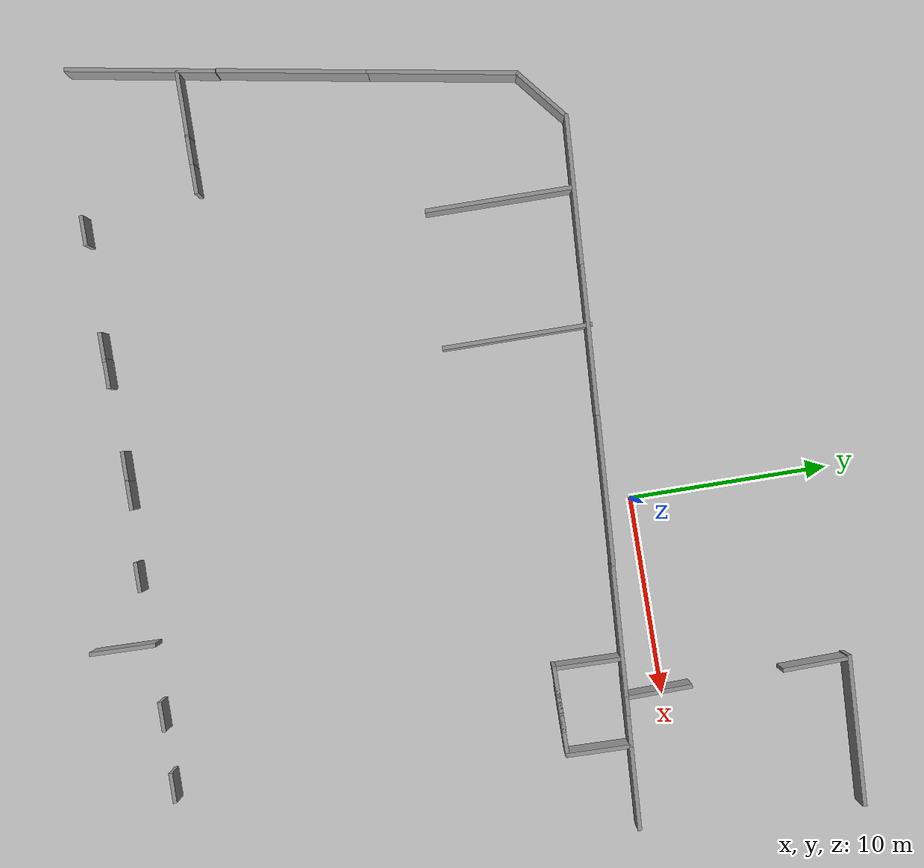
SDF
<sdf version="1.7">
 <world name="default">
  <model name="ground_plane">
   <static>1</static>
   <link name="link">
    <collision name="collision">
     <geometry><plane><normal>0 0 1</normal><size>100 100</size></plane></geometry>
     <surface>
      <contact><collide_bitmask>65535</collide_bitmask></contact>
      <friction><ode><mu>100</mu><mu2>50</mu2></ode></friction>
     </surface>
    </collision>
    <visual name="visual">
     <cast_shadows>0</cast_shadows>
     <geometry><plane><normal>0 0 1</normal><size>100 100</size></plane></geometry>
     <material>
      <script><uri>file://media/materials/scripts/gazebo.material</uri><name>Gazebo/Grey</name></script>
     </material>
    </visual>
   </link>
  </model>
  <model name="grey_wall_clone_4">
   <static>1</static>
   <link name="link">
    <pose>0 0 1.4 0 -0 0</pose>
    <collision name="collision"><geometry><box><size>7.5 0.2 2.8</size></box></geometry></collision>
    <visual name="visual">
     <cast_shadows>0</cast_shadows>
     <geometry><box><size>7.5 0.2 2.8</size></box></geometry>
     <material>
      <script>
       <uri>model://grey_wall/materials/scripts</uri>
       <uri>model://grey_wall/materials/textures</uri>
       <name>vrc/grey_wall</name>
      </script>
     </material>
    </visual>
   </link>
   <pose>-0.621791 -1.28751 -0 0 0 -0.056773</pose>
  </model>
  <model name="grey_wall_clone_4_clone">
   <static>1</static>
   <link name="link">
    <pose>0 0 1.4 0 -0 0</pose>
    <collision name="collision"><geometry><box><size>7.5 0.2 2.8</size></box></geometry></collision>
    <visual name="visual">
     <cast_shadows>0</cast_shadows>
     <geometry><box><size>7.5 0.2 2.8</size></box></geometry>
     <material>
      <script>
       <uri>model://grey_wall/materials/scripts</uri>
       <uri>model://grey_wall/materials/textures</uri>
       <name>vrc/grey_wall</name>
      </script>
     </material>
    </visual>
   </link>
   <pose>-8.10618 -0.875755 -0 0 0 -0.056773</pose>
  </model>
  <model name="grey_wall_clone_4_clone_0">
   <static>1</static>
   <link name="link">
    <pose>0 0 1.4 0 -0 0</pose>
    <collision name="collision"><geometry><box><size>7.5 0.2 2.8</size></box></geometry></collision>
    <visual name="visual">
     <cast_shadows>0</cast_shadows>
     <geometry><box><size>7.5 0.2 2.8</size></box></geometry>
     <material>
      <script>
       <uri>model://grey_wall/materials/scripts</uri>
       <uri>model://grey_wall/materials/textures</uri>
       <name>vrc/grey_wall</name>
      </script>
     </material>
    </visual>
   </link>
   <pose>-15.5562 -0.460659 -0 0 0 -0.056773</pose>
  </model>
  <model name="half_grey_wall_clone_clone_0_clone_1">
   <link name="link">
    <pose>0 0 1.4 0 -0 0</pose>
    <inertial>
     <mass>1</mass>
     <inertia><ixx>1</ixx><ixy>0</ixy><ixz>0</ixz><iyy>1</iyy><iyz>0</iyz><izz>1</izz></inertia>
    </inertial>
    <visual name="visual">
     <cast_shadows>0</cast_shadows>
     <geometry><box><size>3.3 0.2 2.8</size></box></geometry>
     <material>
      <script>
       <uri>model://grey_wall/materials/scripts</uri>
       <uri>model://grey_wall/materials/textures</uri>
       <name>vrc/grey_wall</name>
      </script>
      <shader type="pixel"><normal_map>__default__</normal_map></shader>
      <ambient>1 1 1 1</ambient>
      <diffuse>1 1 1 1</diffuse>
      <specular>0 0 0 1</specular>
      <emissive>0 0 0 1</emissive>
     </material>
    </visual>
    <collision name="collision">
     <geometry><box><size>7.5 0.2 2.8</size></box></geometry>
     <surface>
      <friction>
       <ode><mu>1</mu><mu2>1</mu2><fdir1>0 0 0</fdir1><slip1>0</slip1><slip2>0</slip2></ode>
       <torsional>
        <coefficient>1</coefficient>
        <patch_radius>0</patch_radius>
        <surface_radius>0</surface_radius>
        <use_patch_radius>1</use_patch_radius>
        <ode><slip>0</slip></ode>
       </torsional>
      </friction>
      <bounce><restitution_coefficient>0</restitution_coefficient><threshold>1e+06</threshold></bounce>
      <contact>
       <collide_without_contact>0</collide_without_contact>
       <collide_without_contact_bitmask>1</collide_without_contact_bitmask>
       <collide_bitmask>1</collide_bitmask>
       <ode>
        <soft_cfm>0</soft_cfm>
        <soft_erp>0.2</soft_erp>
        <kp>1e+13</kp>
        <kd>1</kd>
        <max_vel>0.01</max_vel>
        <min_depth>0</min_depth>
       </ode>
       <bullet>
        <split_impulse>1</split_impulse>
        <split_impulse_penetration_threshold>-0.01</split_impulse_penetration_threshold>
        <soft_cfm>0</soft_cfm>
        <soft_erp>0.2</soft_erp>
        <kp>1e+13</kp>
        <kd>1</kd>
       </bullet>
      </contact>
     </surface>
    </collision>
   </link>
   <static>1</static>
   <pose>-20.4293 -1.28686 0 0 0 -2.44925</pose>
  </model>
  <model name="grey_wall_clone_4_clone_0_clone">
   <static>1</static>
   <link name="link">
    <pose>0 0 1.4 0 -0 0</pose>
    <collision name="collision"><geometry><box><size>7.5 0.2 2.8</size></box></geometry></collision>
    <visual name="visual">
     <cast_shadows>0</cast_shadows>
     <geometry><box><size>7.5 0.2 2.8</size></box></geometry>
     <material>
      <script>
       <uri>model://grey_wall/materials/scripts</uri>
       <uri>model://grey_wall/materials/textures</uri>
       <name>vrc/grey_wall</name>
      </script>
     </material>
    </visual>
   </link>
   <pose>-22.3009 -5.96343 0 0 -0 1.40189</pose>
  </model>
  <model name="grey_wall_clone_4_clone_0_clone_clone">
   <static>1</static>
   <link name="link">
    <pose>0 0 1.4 0 -0 0</pose>
    <collision name="collision"><geometry><box><size>7.5 0.2 2.8</size></box></geometry></collision>
    <visual name="visual">
     <cast_shadows>0</cast_shadows>
     <geometry><box><size>7.5 0.2 2.8</size></box></geometry>
     <material>
      <script>
       <uri>model://grey_wall/materials/scripts</uri>
       <uri>model://grey_wall/materials/textures</uri>
       <name>vrc/grey_wall</name>
      </script>
     </material>
    </visual>
   </link>
   <pose>-23.5347 -13.2753 0 0 -0 1.40189</pose>
  </model>
  <model name="grey_wall_clone_4_clone_0_clone_clone_clone">
   <static>1</static>
   <link name="link">
    <pose>0 0 1.4 0 -0 0</pose>
    <collision name="collision"><geometry><box><size>7.5 0.2 2.8</size></box></geometry></collision>
    <visual name="visual">
     <cast_shadows>0</cast_shadows>
     <geometry><box><size>7.5 0.2 2.8</size></box></geometry>
     <material>
      <script>
       <uri>model://grey_wall/materials/scripts</uri>
       <uri>model://grey_wall/materials/textures</uri>
       <name>vrc/grey_wall</name>
      </script>
     </material>
    </visual>
   </link>
   <pose>-24.7789 -20.6957 0 0 -0 1.40189</pose>
  </model>
  <model name="half_grey_wall_clone_clone">
   <link name="link">
    <pose>0 0 1.4 0 -0 0</pose>
    <inertial>
     <mass>1</mass>
     <inertia><ixx>1</ixx><ixy>0</ixy><ixz>0</ixz><iyy>1</iyy><iyz>0</iyz><izz>1</izz></inertia>
    </inertial>
    <visual name="visual">
     <cast_shadows>0</cast_shadows>
     <geometry><box><size>3.3 0.2 2.8</size></box></geometry>
     <material>
      <script>
       <uri>model://grey_wall/materials/scripts</uri>
       <uri>model://grey_wall/materials/textures</uri>
       <name>vrc/grey_wall</name>
      </script>
      <shader type="pixel"><normal_map>__default__</normal_map></shader>
      <ambient>1 1 1 1</ambient>
      <diffuse>1 1 1 1</diffuse>
      <specular>0 0 0 1</specular>
      <emissive>0 0 0 1</emissive>
     </material>
    </visual>
    <collision name="collision">
     <geometry><box><size>7.5 0.2 2.8</size></box></geometry>
     <surface>
      <friction>
       <ode><mu>1</mu><mu2>1</mu2><fdir1>0 0 0</fdir1><slip1>0</slip1><slip2>0</slip2></ode>
       <torsional>
        <coefficient>1</coefficient>
        <patch_radius>0</patch_radius>
        <surface_radius>0</surface_radius>
        <use_patch_radius>1</use_patch_radius>
        <ode><slip>0</slip></ode>
       </torsional>
      </friction>
      <bounce><restitution_coefficient>0</restitution_coefficient><threshold>1e+06</threshold></bounce>
      <contact>
       <collide_without_contact>0</collide_without_contact>
       <collide_without_contact_bitmask>1</collide_without_contact_bitmask>
       <collide_bitmask>1</collide_bitmask>
       <ode>
        <soft_cfm>0</soft_cfm>
        <soft_erp>0.2</soft_erp>
        <kp>1e+13</kp>
        <kd>1</kd>
        <max_vel>0.01</max_vel>
        <min_depth>0</min_depth>
       </ode>
       <bullet>
        <split_impulse>1</split_impulse>
        <split_impulse_penetration_threshold>-0.01</split_impulse_penetration_threshold>
        <soft_cfm>0</soft_cfm>
        <soft_erp>0.2</soft_erp>
        <kp>1e+13</kp>
        <kd>1</kd>
       </bullet>
      </contact>
     </surface>
    </collision>
   </link>
   <static>1</static>
   <pose>-22.8174 -18.896 0 0 0 -3.13942</pose>
  </model>
  <model name="half_grey_wall_clone_clone_clone_0_clone_clone_0_clone_clone_0_clone_0">
   <link name="link">
    <pose>0 0 1.4 0 -0 0</pose>
    <inertial>
     <mass>1</mass>
     <inertia><ixx>1</ixx><ixy>0</ixy><ixz>0</ixz><iyy>1</iyy><iyz>0</iyz><izz>1</izz></inertia>
    </inertial>
    <visual name="visual">
     <cast_shadows>0</cast_shadows>
     <geometry><box><size>1.5 0.2 2.8</size></box></geometry>
     <material>
      <script>
       <uri>model://grey_wall/materials/scripts</uri>
       <uri>model://grey_wall/materials/textures</uri>
       <name>vrc/grey_wall</name>
      </script>
      <shader type="pixel"><normal_map>__default__</normal_map></shader>
      <ambient>1 1 1 1</ambient>
      <diffuse>1 1 1 1</diffuse>
      <specular>0 0 0 1</specular>
      <emissive>0 0 0 1</emissive>
     </material>
    </visual>
    <collision name="collision">
     <geometry><box><size>1.5 0.2 2.8</size></box></geometry>
     <surface>
      <friction>
       <ode><mu>1</mu><mu2>1</mu2><fdir1>0 0 0</fdir1><slip1>0</slip1><slip2>0</slip2></ode>
       <torsional>
        <coefficient>1</coefficient>
        <patch_radius>0</patch_radius>
        <surface_radius>0</surface_radius>
        <use_patch_radius>1</use_patch_radius>
        <ode><slip>0</slip></ode>
       </torsional>
      </friction>
      <bounce><restitution_coefficient>0</restitution_coefficient><threshold>1e+06</threshold></bounce>
      <contact>
       <collide_without_contact>0</collide_without_contact>
       <collide_without_contact_bitmask>1</collide_without_contact_bitmask>
       <collide_bitmask>1</collide_bitmask>
       <ode>
        <soft_cfm>0</soft_cfm>
        <soft_erp>0.2</soft_erp>
        <kp>1e+13</kp>
        <kd>1</kd>
        <max_vel>0.01</max_vel>
        <min_depth>0</min_depth>
       </ode>
       <bullet>
        <split_impulse>1</split_impulse>
        <split_impulse_penetration_threshold>-0.01</split_impulse_penetration_threshold>
        <soft_cfm>0</soft_cfm>
        <soft_erp>0.2</soft_erp>
        <kp>1e+13</kp>
        <kd>1</kd>
       </bullet>
      </contact>
     </surface>
    </collision>
   </link>
   <static>1</static>
   <pose>6.93041 -24.7026 0 0 0 -3.13942</pose>
  </model>
  <model name="half_grey_wall_clone_clone_clone_0_clone_clone_0_clone_clone_0_clone">
   <link name="link">
    <pose>0 0 1.4 0 -0 0</pose>
    <inertial>
     <mass>1</mass>
     <inertia><ixx>1</ixx><ixy>0</ixy><ixz>0</ixz><iyy>1</iyy><iyz>0</iyz><izz>1</izz></inertia>
    </inertial>
    <visual name="visual">
     <cast_shadows>0</cast_shadows>
     <geometry><box><size>1.5 0.2 2.8</size></box></geometry>
     <material>
      <script>
       <uri>model://grey_wall/materials/scripts</uri>
       <uri>model://grey_wall/materials/textures</uri>
       <name>vrc/grey_wall</name>
      </script>
      <shader type="pixel"><normal_map>__default__</normal_map></shader>
      <ambient>1 1 1 1</ambient>
      <diffuse>1 1 1 1</diffuse>
      <specular>0 0 0 1</specular>
      <emissive>0 0 0 1</emissive>
     </material>
    </visual>
    <collision name="collision">
     <geometry><box><size>1.5 0.2 2.8</size></box></geometry>
     <surface>
      <friction>
       <ode><mu>1</mu><mu2>1</mu2><fdir1>0 0 0</fdir1><slip1>0</slip1><slip2>0</slip2></ode>
       <torsional>
        <coefficient>1</coefficient>
        <patch_radius>0</patch_radius>
        <surface_radius>0</surface_radius>
        <use_patch_radius>1</use_patch_radius>
        <ode><slip>0</slip></ode>
       </torsional>
      </friction>
      <bounce><restitution_coefficient>0</restitution_coefficient><threshold>1e+06</threshold></bounce>
      <contact>
       <collide_without_contact>0</collide_without_contact>
       <collide_without_contact_bitmask>1</collide_without_contact_bitmask>
       <collide_bitmask>1</collide_bitmask>
       <ode>
        <soft_cfm>0</soft_cfm>
        <soft_erp>0.2</soft_erp>
        <kp>1e+13</kp>
        <kd>1</kd>
        <max_vel>0.01</max_vel>
        <min_depth>0</min_depth>
       </ode>
       <bullet>
        <split_impulse>1</split_impulse>
        <split_impulse_penetration_threshold>-0.01</split_impulse_penetration_threshold>
        <soft_cfm>0</soft_cfm>
        <soft_erp>0.2</soft_erp>
        <kp>1e+13</kp>
        <kd>1</kd>
       </bullet>
      </contact>
     </surface>
    </collision>
   </link>
   <static>1</static>
   <pose>10.4815 -24.7228 0 0 0 -3.13942</pose>
  </model>
  <model name="half_grey_wall_clone_clone_0_clone_clone_clone_clone">
   <link name="link">
    <pose>0 0 1.4 0 -0 0</pose>
    <inertial>
     <mass>1</mass>
     <inertia><ixx>1</ixx><ixy>0</ixy><ixz>0</ixz><iyy>1</iyy><iyz>0</iyz><izz>1</izz></inertia>
    </inertial>
    <visual name="visual">
     <cast_shadows>0</cast_shadows>
     <geometry><box><size>3.3 0.2 2.8</size></box></geometry>
     <material>
      <script>
       <uri>model://grey_wall/materials/scripts</uri>
       <uri>model://grey_wall/materials/textures</uri>
       <name>vrc/grey_wall</name>
      </script>
      <shader type="pixel"><normal_map>__default__</normal_map></shader>
      <ambient>1 1 1 1</ambient>
      <diffuse>1 1 1 1</diffuse>
      <specular>0 0 0 1</specular>
      <emissive>0 0 0 1</emissive>
     </material>
    </visual>
    <collision name="collision">
     <geometry><box><size>3.3 0.2 2.8</size></box></geometry>
     <surface>
      <friction>
       <ode><mu>1</mu><mu2>1</mu2><fdir1>0 0 0</fdir1><slip1>0</slip1><slip2>0</slip2></ode>
       <torsional>
        <coefficient>1</coefficient>
        <patch_radius>0</patch_radius>
        <surface_radius>0</surface_radius>
        <use_patch_radius>1</use_patch_radius>
        <ode><slip>0</slip></ode>
       </torsional>
      </friction>
      <bounce><restitution_coefficient>0</restitution_coefficient><threshold>1e+06</threshold></bounce>
      <contact>
       <collide_without_contact>0</collide_without_contact>
       <collide_without_contact_bitmask>1</collide_without_contact_bitmask>
       <collide_bitmask>1</collide_bitmask>
       <ode>
        <soft_cfm>0</soft_cfm>
        <soft_erp>0.2</soft_erp>
        <kp>1e+13</kp>
        <kd>1</kd>
        <max_vel>0.01</max_vel>
        <min_depth>0</min_depth>
       </ode>
       <bullet>
        <split_impulse>1</split_impulse>
        <split_impulse_penetration_threshold>-0.01</split_impulse_penetration_threshold>
        <soft_cfm>0</soft_cfm>
        <soft_erp>0.2</soft_erp>
        <kp>1e+13</kp>
        <kd>1</kd>
       </bullet>
      </contact>
     </surface>
    </collision>
   </link>
   <static>1</static>
   <pose>3.34058 -26.087 0 0 0 -1.58891</pose>
  </model>
  <model name="half_grey_wall_clone_clone_clone_0_clone_clone_0_clone_clone_0_clone_0_clone">
   <link name="link">
    <pose>0 0 1.4 0 -0 0</pose>
    <inertial>
     <mass>1</mass>
     <inertia><ixx>1</ixx><ixy>0</ixy><ixz>0</ixz><iyy>1</iyy><iyz>0</iyz><izz>1</izz></inertia>
    </inertial>
    <visual name="visual">
     <cast_shadows>0</cast_shadows>
     <geometry><box><size>1.5 0.2 2.8</size></box></geometry>
     <material>
      <script>
       <uri>model://grey_wall/materials/scripts</uri>
       <uri>model://grey_wall/materials/textures</uri>
       <name>vrc/grey_wall</name>
      </script>
      <shader type="pixel"><normal_map>__default__</normal_map></shader>
      <ambient>1 1 1 1</ambient>
      <diffuse>1 1 1 1</diffuse>
      <specular>0 0 0 1</specular>
      <emissive>0 0 0 1</emissive>
     </material>
    </visual>
    <collision name="collision">
     <geometry><box><size>1.5 0.2 2.8</size></box></geometry>
     <surface>
      <friction>
       <ode><mu>1</mu><mu2>1</mu2><fdir1>0 0 0</fdir1><slip1>0</slip1><slip2>0</slip2></ode>
       <torsional>
        <coefficient>1</coefficient>
        <patch_radius>0</patch_radius>
        <surface_radius>0</surface_radius>
        <use_patch_radius>1</use_patch_radius>
        <ode><slip>0</slip></ode>
       </torsional>
      </friction>
      <bounce><restitution_coefficient>0</restitution_coefficient><threshold>1e+06</threshold></bounce>
      <contact>
       <collide_without_contact>0</collide_without_contact>
       <collide_without_contact_bitmask>1</collide_without_contact_bitmask>
       <collide_bitmask>1</collide_bitmask>
       <ode>
        <soft_cfm>0</soft_cfm>
        <soft_erp>0.2</soft_erp>
        <kp>1e+13</kp>
        <kd>1</kd>
        <max_vel>0.01</max_vel>
        <min_depth>0</min_depth>
       </ode>
       <bullet>
        <split_impulse>1</split_impulse>
        <split_impulse_penetration_threshold>-0.01</split_impulse_penetration_threshold>
        <soft_cfm>0</soft_cfm>
        <soft_erp>0.2</soft_erp>
        <kp>1e+13</kp>
        <kd>1</kd>
       </bullet>
      </contact>
     </surface>
    </collision>
   </link>
   <static>1</static>
   <pose>-0.067891 -24.7837 0 0 0 -3.13942</pose>
  </model>
  <model name="half_grey_wall_clone_clone_clone_0_clone_clone_0_clone_clone_0_clone_0_clone_0">
   <link name="link">
    <pose>0 0 1.4 0 -0 0</pose>
    <inertial>
     <mass>1</mass>
     <inertia><ixx>1</ixx><ixy>0</ixy><ixz>0</ixz><iyy>1</iyy><iyz>0</iyz><izz>1</izz></inertia>
    </inertial>
    <visual name="visual">
     <cast_shadows>0</cast_shadows>
     <geometry><box><size>1.5 0.2 2.8</size></box></geometry>
     <material>
      <script>
       <uri>model://grey_wall/materials/scripts</uri>
       <uri>model://grey_wall/materials/textures</uri>
       <name>vrc/grey_wall</name>
      </script>
      <shader type="pixel"><normal_map>__default__</normal_map></shader>
      <ambient>1 1 1 1</ambient>
      <diffuse>1 1 1 1</diffuse>
      <specular>0 0 0 1</specular>
      <emissive>0 0 0 1</emissive>
     </material>
    </visual>
    <collision name="collision">
     <geometry><box><size>1.5 0.2 2.8</size></box></geometry>
     <surface>
      <friction>
       <ode><mu>1</mu><mu2>1</mu2><fdir1>0 0 0</fdir1><slip1>0</slip1><slip2>0</slip2></ode>
       <torsional>
        <coefficient>1</coefficient>
        <patch_radius>0</patch_radius>
        <surface_radius>0</surface_radius>
        <use_patch_radius>1</use_patch_radius>
        <ode><slip>0</slip></ode>
       </torsional>
      </friction>
      <bounce><restitution_coefficient>0</restitution_coefficient><threshold>1e+06</threshold></bounce>
      <contact>
       <collide_without_contact>0</collide_without_contact>
       <collide_without_contact_bitmask>1</collide_without_contact_bitmask>
       <collide_bitmask>1</collide_bitmask>
       <ode>
        <soft_cfm>0</soft_cfm>
        <soft_erp>0.2</soft_erp>
        <kp>1e+13</kp>
        <kd>1</kd>
        <max_vel>0.01</max_vel>
        <min_depth>0</min_depth>
       </ode>
       <bullet>
        <split_impulse>1</split_impulse>
        <split_impulse_penetration_threshold>-0.01</split_impulse_penetration_threshold>
        <soft_cfm>0</soft_cfm>
        <soft_erp>0.2</soft_erp>
        <kp>1e+13</kp>
        <kd>1</kd>
       </bullet>
      </contact>
     </surface>
    </collision>
   </link>
   <static>1</static>
   <pose>-4.14495 -24.5442 0 0 0 -3.13942</pose>
  </model>
  <model name="half_grey_wall_clone_clone_clone_0_clone_clone_0_clone_clone_0_clone_0_clone_1">
   <link name="link">
    <pose>0 0 1.4 0 -0 0</pose>
    <inertial>
     <mass>1</mass>
     <inertia><ixx>1</ixx><ixy>0</ixy><ixz>0</ixz><iyy>1</iyy><iyz>0</iyz><izz>1</izz></inertia>
    </inertial>
    <visual name="visual">
     <cast_shadows>0</cast_shadows>
     <geometry><box><size>1.5 0.2 2.8</size></box></geometry>
     <material>
      <script>
       <uri>model://grey_wall/materials/scripts</uri>
       <uri>model://grey_wall/materials/textures</uri>
       <name>vrc/grey_wall</name>
      </script>
      <shader type="pixel"><normal_map>__default__</normal_map></shader>
      <ambient>1 1 1 1</ambient>
      <diffuse>1 1 1 1</diffuse>
      <specular>0 0 0 1</specular>
      <emissive>0 0 0 1</emissive>
     </material>
    </visual>
    <collision name="collision">
     <geometry><box><size>1.5 0.2 2.8</size></box></geometry>
     <surface>
      <friction>
       <ode><mu>1</mu><mu2>1</mu2><fdir1>0 0 0</fdir1><slip1>0</slip1><slip2>0</slip2></ode>
       <torsional>
        <coefficient>1</coefficient>
        <patch_radius>0</patch_radius>
        <surface_radius>0</surface_radius>
        <use_patch_radius>1</use_patch_radius>
        <ode><slip>0</slip></ode>
       </torsional>
      </friction>
      <bounce><restitution_coefficient>0</restitution_coefficient><threshold>1e+06</threshold></bounce>
      <contact>
       <collide_without_contact>0</collide_without_contact>
       <collide_without_contact_bitmask>1</collide_without_contact_bitmask>
       <collide_bitmask>1</collide_bitmask>
       <ode>
        <soft_cfm>0</soft_cfm>
        <soft_erp>0.2</soft_erp>
        <kp>1e+13</kp>
        <kd>1</kd>
        <max_vel>0.01</max_vel>
        <min_depth>0</min_depth>
       </ode>
       <bullet>
        <split_impulse>1</split_impulse>
        <split_impulse_penetration_threshold>-0.01</split_impulse_penetration_threshold>
        <soft_cfm>0</soft_cfm>
        <soft_erp>0.2</soft_erp>
        <kp>1e+13</kp>
        <kd>1</kd>
       </bullet>
      </contact>
     </surface>
    </collision>
   </link>
   <static>1</static>
   <pose>-5.58974 -24.545 0 0 0 -3.13942</pose>
  </model>
  <model name="half_grey_wall_clone_clone_clone_0_clone_clone_0_clone_clone_0_clone_0_clone_2">
   <link name="link">
    <pose>0 0 1.4 0 -0 0</pose>
    <inertial>
     <mass>1</mass>
     <inertia><ixx>1</ixx><ixy>0</ixy><ixz>0</ixz><iyy>1</iyy><iyz>0</iyz><izz>1</izz></inertia>
    </inertial>
    <visual name="visual">
     <cast_shadows>0</cast_shadows>
     <geometry><box><size>1.5 0.2 2.8</size></box></geometry>
     <material>
      <script>
       <uri>model://grey_wall/materials/scripts</uri>
       <uri>model://grey_wall/materials/textures</uri>
       <name>vrc/grey_wall</name>
      </script>
      <shader type="pixel"><normal_map>__default__</normal_map></shader>
      <ambient>1 1 1 1</ambient>
      <diffuse>1 1 1 1</diffuse>
      <specular>0 0 0 1</specular>
      <emissive>0 0 0 1</emissive>
     </material>
    </visual>
    <collision name="collision">
     <geometry><box><size>1.5 0.2 2.8</size></box></geometry>
     <surface>
      <friction>
       <ode><mu>1</mu><mu2>1</mu2><fdir1>0 0 0</fdir1><slip1>0</slip1><slip2>0</slip2></ode>
       <torsional>
        <coefficient>1</coefficient>
        <patch_radius>0</patch_radius>
        <surface_radius>0</surface_radius>
        <use_patch_radius>1</use_patch_radius>
        <ode><slip>0</slip></ode>
       </torsional>
      </friction>
      <bounce><restitution_coefficient>0</restitution_coefficient><threshold>1e+06</threshold></bounce>
      <contact>
       <collide_without_contact>0</collide_without_contact>
       <collide_without_contact_bitmask>1</collide_without_contact_bitmask>
       <collide_bitmask>1</collide_bitmask>
       <ode>
        <soft_cfm>0</soft_cfm>
        <soft_erp>0.2</soft_erp>
        <kp>1e+13</kp>
        <kd>1</kd>
        <max_vel>0.01</max_vel>
        <min_depth>0</min_depth>
       </ode>
       <bullet>
        <split_impulse>1</split_impulse>
        <split_impulse_penetration_threshold>-0.01</split_impulse_penetration_threshold>
        <soft_cfm>0</soft_cfm>
        <soft_erp>0.2</soft_erp>
        <kp>1e+13</kp>
        <kd>1</kd>
       </bullet>
      </contact>
     </surface>
    </collision>
   </link>
   <static>1</static>
   <pose>-11.5718 -24.7111 0 0 0 -3.13942</pose>
  </model>
  <model name="half_grey_wall_clone_clone_clone_0_clone_clone_0_clone_clone_0_clone_0_clone_3">
   <link name="link">
    <pose>0 0 1.4 0 -0 0</pose>
    <inertial>
     <mass>1</mass>
     <inertia><ixx>1</ixx><ixy>0</ixy><ixz>0</ixz><iyy>1</iyy><iyz>0</iyz><izz>1</izz></inertia>
    </inertial>
    <visual name="visual">
     <cast_shadows>0</cast_shadows>
     <geometry><box><size>1.5 0.2 2.8</size></box></geometry>
     <material>
      <script>
       <uri>model://grey_wall/materials/scripts</uri>
       <uri>model://grey_wall/materials/textures</uri>
       <name>vrc/grey_wall</name>
      </script>
      <shader type="pixel"><normal_map>__default__</normal_map></shader>
      <ambient>1 1 1 1</ambient>
      <diffuse>1 1 1 1</diffuse>
      <specular>0 0 0 1</specular>
      <emissive>0 0 0 1</emissive>
     </material>
    </visual>
    <collision name="collision">
     <geometry><box><size>1.5 0.2 2.8</size></box></geometry>
     <surface>
      <friction>
       <ode><mu>1</mu><mu2>1</mu2><fdir1>0 0 0</fdir1><slip1>0</slip1><slip2>0</slip2></ode>
       <torsional>
        <coefficient>1</coefficient>
        <patch_radius>0</patch_radius>
        <surface_radius>0</surface_radius>
        <use_patch_radius>1</use_patch_radius>
        <ode><slip>0</slip></ode>
       </torsional>
      </friction>
      <bounce><restitution_coefficient>0</restitution_coefficient><threshold>1e+06</threshold></bounce>
      <contact>
       <collide_without_contact>0</collide_without_contact>
       <collide_without_contact_bitmask>1</collide_without_contact_bitmask>
       <collide_bitmask>1</collide_bitmask>
       <ode>
        <soft_cfm>0</soft_cfm>
        <soft_erp>0.2</soft_erp>
        <kp>1e+13</kp>
        <kd>1</kd>
        <max_vel>0.01</max_vel>
        <min_depth>0</min_depth>
       </ode>
       <bullet>
        <split_impulse>1</split_impulse>
        <split_impulse_penetration_threshold>-0.01</split_impulse_penetration_threshold>
        <soft_cfm>0</soft_cfm>
        <soft_erp>0.2</soft_erp>
        <kp>1e+13</kp>
        <kd>1</kd>
       </bullet>
      </contact>
     </surface>
    </collision>
   </link>
   <static>1</static>
   <pose>-10.2542 -24.694 0 0 0 -3.13942</pose>
  </model>
  <model name="half_grey_wall_clone_clone_clone_0_clone_clone_0_clone_clone_0_clone_0_clone_4">
   <link name="link">
    <pose>0 0 1.4 0 -0 0</pose>
    <inertial>
     <mass>1</mass>
     <inertia><ixx>1</ixx><ixy>0</ixy><ixz>0</ixz><iyy>1</iyy><iyz>0</iyz><izz>1</izz></inertia>
    </inertial>
    <visual name="visual">
     <cast_shadows>0</cast_shadows>
     <geometry><box><size>1.5 0.2 2.8</size></box></geometry>
     <material>
      <script>
       <uri>model://grey_wall/materials/scripts</uri>
       <uri>model://grey_wall/materials/textures</uri>
       <name>vrc/grey_wall</name>
      </script>
      <shader type="pixel"><normal_map>__default__</normal_map></shader>
      <ambient>1 1 1 1</ambient>
      <diffuse>1 1 1 1</diffuse>
      <specular>0 0 0 1</specular>
      <emissive>0 0 0 1</emissive>
     </material>
    </visual>
    <collision name="collision">
     <geometry><box><size>1.5 0.2 2.8</size></box></geometry>
     <surface>
      <friction>
       <ode><mu>1</mu><mu2>1</mu2><fdir1>0 0 0</fdir1><slip1>0</slip1><slip2>0</slip2></ode>
       <torsional>
        <coefficient>1</coefficient>
        <patch_radius>0</patch_radius>
        <surface_radius>0</surface_radius>
        <use_patch_radius>1</use_patch_radius>
        <ode><slip>0</slip></ode>
       </torsional>
      </friction>
      <bounce><restitution_coefficient>0</restitution_coefficient><threshold>1e+06</threshold></bounce>
      <contact>
       <collide_without_contact>0</collide_without_contact>
       <collide_without_contact_bitmask>1</collide_without_contact_bitmask>
       <collide_bitmask>1</collide_bitmask>
       <ode>
        <soft_cfm>0</soft_cfm>
        <soft_erp>0.2</soft_erp>
        <kp>1e+13</kp>
        <kd>1</kd>
        <max_vel>0.01</max_vel>
        <min_depth>0</min_depth>
       </ode>
       <bullet>
        <split_impulse>1</split_impulse>
        <split_impulse_penetration_threshold>-0.01</split_impulse_penetration_threshold>
        <soft_cfm>0</soft_cfm>
        <soft_erp>0.2</soft_erp>
        <kp>1e+13</kp>
        <kd>1</kd>
       </bullet>
      </contact>
     </surface>
    </collision>
   </link>
   <static>1</static>
   <pose>-17.4109 -24.6995 0 0 0 -3.13942</pose>
  </model>
  <model name="half_grey_wall_clone_clone_clone_0_clone_clone_0_clone_clone_0_clone_0_clone_5">
   <link name="link">
    <pose>0 0 1.4 0 -0 0</pose>
    <inertial>
     <mass>1</mass>
     <inertia><ixx>1</ixx><ixy>0</ixy><ixz>0</ixz><iyy>1</iyy><iyz>0</iyz><izz>1</izz></inertia>
    </inertial>
    <visual name="visual">
     <cast_shadows>0</cast_shadows>
     <geometry><box><size>1.5 0.2 2.8</size></box></geometry>
     <material>
      <script>
       <uri>model://grey_wall/materials/scripts</uri>
       <uri>model://grey_wall/materials/textures</uri>
       <name>vrc/grey_wall</name>
      </script>
      <shader type="pixel"><normal_map>__default__</normal_map></shader>
      <ambient>1 1 1 1</ambient>
      <diffuse>1 1 1 1</diffuse>
      <specular>0 0 0 1</specular>
      <emissive>0 0 0 1</emissive>
     </material>
    </visual>
    <collision name="collision">
     <geometry><box><size>1.5 0.2 2.8</size></box></geometry>
     <surface>
      <friction>
       <ode><mu>1</mu><mu2>1</mu2><fdir1>0 0 0</fdir1><slip1>0</slip1><slip2>0</slip2></ode>
       <torsional>
        <coefficient>1</coefficient>
        <patch_radius>0</patch_radius>
        <surface_radius>0</surface_radius>
        <use_patch_radius>1</use_patch_radius>
        <ode><slip>0</slip></ode>
       </torsional>
      </friction>
      <bounce><restitution_coefficient>0</restitution_coefficient><threshold>1e+06</threshold></bounce>
      <contact>
       <collide_without_contact>0</collide_without_contact>
       <collide_without_contact_bitmask>1</collide_without_contact_bitmask>
       <collide_bitmask>1</collide_bitmask>
       <ode>
        <soft_cfm>0</soft_cfm>
        <soft_erp>0.2</soft_erp>
        <kp>1e+13</kp>
        <kd>1</kd>
        <max_vel>0.01</max_vel>
        <min_depth>0</min_depth>
       </ode>
       <bullet>
        <split_impulse>1</split_impulse>
        <split_impulse_penetration_threshold>-0.01</split_impulse_penetration_threshold>
        <soft_cfm>0</soft_cfm>
        <soft_erp>0.2</soft_erp>
        <kp>1e+13</kp>
        <kd>1</kd>
       </bullet>
      </contact>
     </surface>
    </collision>
   </link>
   <static>1</static>
   <pose>-20.5239 -18.9005 0 0 0 -3.13942</pose>
  </model>
  <model name="half_grey_wall_clone_clone_clone_0_clone_clone_0_clone_clone_0_clone_0_clone_6">
   <link name="link">
    <pose>0 0 1.4 0 -0 0</pose>
    <inertial>
     <mass>1</mass>
     <inertia><ixx>1</ixx><ixy>0</ixy><ixz>0</ixz><iyy>1</iyy><iyz>0</iyz><izz>1</izz></inertia>
    </inertial>
    <visual name="visual">
     <cast_shadows>0</cast_shadows>
     <geometry><box><size>1.5 0.2 2.8</size></box></geometry>
     <material>
      <script>
       <uri>model://grey_wall/materials/scripts</uri>
       <uri>model://grey_wall/materials/textures</uri>
       <name>vrc/grey_wall</name>
      </script>
      <shader type="pixel"><normal_map>__default__</normal_map></shader>
      <ambient>1 1 1 1</ambient>
      <diffuse>1 1 1 1</diffuse>
      <specular>0 0 0 1</specular>
      <emissive>0 0 0 1</emissive>
     </material>
    </visual>
    <collision name="collision">
     <geometry><box><size>1.5 0.2 2.8</size></box></geometry>
     <surface>
      <friction>
       <ode><mu>1</mu><mu2>1</mu2><fdir1>0 0 0</fdir1><slip1>0</slip1><slip2>0</slip2></ode>
       <torsional>
        <coefficient>1</coefficient>
        <patch_radius>0</patch_radius>
        <surface_radius>0</surface_radius>
        <use_patch_radius>1</use_patch_radius>
        <ode><slip>0</slip></ode>
       </torsional>
      </friction>
      <bounce><restitution_coefficient>0</restitution_coefficient><threshold>1e+06</threshold></bounce>
      <contact>
       <collide_without_contact>0</collide_without_contact>
       <collide_without_contact_bitmask>1</collide_without_contact_bitmask>
       <collide_bitmask>1</collide_bitmask>
       <ode>
        <soft_cfm>0</soft_cfm>
        <soft_erp>0.2</soft_erp>
        <kp>1e+13</kp>
        <kd>1</kd>
        <max_vel>0.01</max_vel>
        <min_depth>0</min_depth>
       </ode>
       <bullet>
        <split_impulse>1</split_impulse>
        <split_impulse_penetration_threshold>-0.01</split_impulse_penetration_threshold>
        <soft_cfm>0</soft_cfm>
        <soft_erp>0.2</soft_erp>
        <kp>1e+13</kp>
        <kd>1</kd>
       </bullet>
      </contact>
     </surface>
    </collision>
   </link>
   <static>1</static>
   <pose>-19.0714 -18.8875 0 0 0 -3.13942</pose>
  </model>
  <model name="half_grey_wall_clone_clone_0_clone_clone_clone_clone_0_clone_0_clone_clone_1_clone_clone_clone_5">
   <link name="link">
    <pose>0 0 1.4 0 -0 0</pose>
    <inertial>
     <mass>1</mass>
     <inertia><ixx>1</ixx><ixy>0</ixy><ixz>0</ixz><iyy>1</iyy><iyz>0</iyz><izz>1</izz></inertia>
    </inertial>
    <visual name="visual">
     <cast_shadows>0</cast_shadows>
     <geometry><box><size>3.3 0.2 2.8</size></box></geometry>
     <material>
      <script>
       <uri>model://grey_wall/materials/scripts</uri>
       <uri>model://grey_wall/materials/textures</uri>
       <name>vrc/grey_wall</name>
      </script>
      <shader type="pixel"><normal_map>__default__</normal_map></shader>
      <ambient>1 1 1 1</ambient>
      <diffuse>1 1 1 1</diffuse>
      <specular>0 0 0 1</specular>
      <emissive>0 0 0 1</emissive>
     </material>
    </visual>
    <collision name="collision">
     <geometry><box><size>3.3 0.2 2.8</size></box></geometry>
     <surface>
      <friction>
       <ode><mu>1</mu><mu2>1</mu2><fdir1>0 0 0</fdir1><slip1>0</slip1><slip2>0</slip2></ode>
       <torsional>
        <coefficient>1</coefficient>
        <patch_radius>0</patch_radius>
        <surface_radius>0</surface_radius>
        <use_patch_radius>1</use_patch_radius>
        <ode><slip>0</slip></ode>
       </torsional>
      </friction>
      <bounce><restitution_coefficient>0</restitution_coefficient><threshold>1e+06</threshold></bounce>
      <contact>
       <collide_without_contact>0</collide_without_contact>
       <collide_without_contact_bitmask>1</collide_without_contact_bitmask>
       <collide_bitmask>1</collide_bitmask>
       <ode>
        <soft_cfm>0</soft_cfm>
        <soft_erp>0.2</soft_erp>
        <kp>1e+13</kp>
        <kd>1</kd>
        <max_vel>0.01</max_vel>
        <min_depth>0</min_depth>
       </ode>
       <bullet>
        <split_impulse>1</split_impulse>
        <split_impulse_penetration_threshold>-0.01</split_impulse_penetration_threshold>
        <soft_cfm>0</soft_cfm>
        <soft_erp>0.2</soft_erp>
        <kp>1e+13</kp>
        <kd>1</kd>
       </bullet>
      </contact>
     </surface>
    </collision>
   </link>
   <static>1</static>
   <pose>9.49458 7.59767 -0 0 0 -1.5482</pose>
  </model>
  <model name="grey_wall_clone_4_clone_1">
   <static>1</static>
   <link name="link">
    <pose>0 0 1.4 0 -0 0</pose>
    <collision name="collision"><geometry><box><size>7.5 0.2 2.8</size></box></geometry></collision>
    <visual name="visual">
     <cast_shadows>0</cast_shadows>
     <geometry><box><size>7.5 0.2 2.8</size></box></geometry>
     <material>
      <script>
       <uri>model://grey_wall/materials/scripts</uri>
       <uri>model://grey_wall/materials/textures</uri>
       <name>vrc/grey_wall</name>
      </script>
     </material>
    </visual>
   </link>
   <pose>6.78273 -1.73095 -0 0 0 -0.056773</pose>
  </model>
  <model name="half_grey_wall_clone_clone_0_clone_clone_clone_clone_0_clone_0_clone_clone_1_clone_clone_clone_4_clone_0">
   <link name="link">
    <pose>0 0 1.4 0 -0 0</pose>
    <inertial>
     <mass>1</mass>
     <inertia><ixx>1</ixx><ixy>0</ixy><ixz>0</ixz><iyy>1</iyy><iyz>0</iyz><izz>1</izz></inertia>
    </inertial>
    <visual name="visual">
     <cast_shadows>0</cast_shadows>
     <geometry><box><size>3.3 0.2 2.8</size></box></geometry>
     <material>
      <script>
       <uri>model://grey_wall/materials/scripts</uri>
       <uri>model://grey_wall/materials/textures</uri>
       <name>vrc/grey_wall</name>
      </script>
      <shader type="pixel"><normal_map>__default__</normal_map></shader>
      <ambient>1 1 1 1</ambient>
      <diffuse>1 1 1 1</diffuse>
      <specular>0 0 0 1</specular>
      <emissive>0 0 0 1</emissive>
     </material>
    </visual>
    <collision name="collision">
     <geometry><box><size>3.3 0.2 2.8</size></box></geometry>
     <surface>
      <friction>
       <ode><mu>1</mu><mu2>1</mu2><fdir1>0 0 0</fdir1><slip1>0</slip1><slip2>0</slip2></ode>
       <torsional>
        <coefficient>1</coefficient>
        <patch_radius>0</patch_radius>
        <surface_radius>0</surface_radius>
        <use_patch_radius>1</use_patch_radius>
        <ode><slip>0</slip></ode>
       </torsional>
      </friction>
      <bounce><restitution_coefficient>0</restitution_coefficient><threshold>1e+06</threshold></bounce>
      <contact>
       <collide_without_contact>0</collide_without_contact>
       <collide_without_contact_bitmask>1</collide_without_contact_bitmask>
       <collide_bitmask>1</collide_bitmask>
       <ode>
        <soft_cfm>0</soft_cfm>
        <soft_erp>0.2</soft_erp>
        <kp>1e+13</kp>
        <kd>1</kd>
        <max_vel>0.01</max_vel>
        <min_depth>0</min_depth>
       </ode>
       <bullet>
        <split_impulse>1</split_impulse>
        <split_impulse_penetration_threshold>-0.01</split_impulse_penetration_threshold>
        <soft_cfm>0</soft_cfm>
        <soft_erp>0.2</soft_erp>
        <kp>1e+13</kp>
        <kd>1</kd>
       </bullet>
      </contact>
     </surface>
    </collision>
   </link>
   <static>1</static>
   <pose>9.61233 -0.247595 -0 0 0 -1.5482</pose>
  </model>
  <model name="grey_wall_clone_0_clone">
   <static>1</static>
   <link name="link">
    <pose>0 0 1.4 0 -0 0</pose>
    <collision name="collision"><geometry><box><size>7.5 0.2 2.8</size></box></geometry></collision>
    <visual name="visual">
     <cast_shadows>0</cast_shadows>
     <geometry><box><size>7.5 0.2 2.8</size></box></geometry>
     <material>
      <script>
       <uri>model://grey_wall/materials/scripts</uri>
       <uri>model://grey_wall/materials/textures</uri>
       <name>vrc/grey_wall</name>
      </script>
     </material>
    </visual>
   </link>
   <pose>13.0466 9.08679 -0 0 0 -0.056773</pose>
  </model>
  <model name="half_grey_wall_clone_clone_0_clone_clone_clone_clone_clone">
   <link name="link">
    <pose>0 0 1.4 0 -0 0</pose>
    <inertial>
     <mass>1</mass>
     <inertia><ixx>1</ixx><ixy>0</ixy><ixz>0</ixz><iyy>1</iyy><iyz>0</iyz><izz>1</izz></inertia>
    </inertial>
    <visual name="visual">
     <cast_shadows>0</cast_shadows>
     <geometry><box><size>3.3 0.2 2.8</size></box></geometry>
     <material>
      <script>
       <uri>model://grey_wall/materials/scripts</uri>
       <uri>model://grey_wall/materials/textures</uri>
       <name>vrc/grey_wall</name>
      </script>
      <shader type="pixel"><normal_map>__default__</normal_map></shader>
      <ambient>1 1 1 1</ambient>
      <diffuse>1 1 1 1</diffuse>
      <specular>0 0 0 1</specular>
      <emissive>0 0 0 1</emissive>
     </material>
    </visual>
    <collision name="collision">
     <geometry><box><size>3.3 0.2 2.8</size></box></geometry>
     <surface>
      <friction>
       <ode><mu>1</mu><mu2>1</mu2><fdir1>0 0 0</fdir1><slip1>0</slip1><slip2>0</slip2></ode>
       <torsional>
        <coefficient>1</coefficient>
        <patch_radius>0</patch_radius>
        <surface_radius>0</surface_radius>
        <use_patch_radius>1</use_patch_radius>
        <ode><slip>0</slip></ode>
       </torsional>
      </friction>
      <bounce><restitution_coefficient>0</restitution_coefficient><threshold>1e+06</threshold></bounce>
      <contact>
       <collide_without_contact>0</collide_without_contact>
       <collide_without_contact_bitmask>1</collide_without_contact_bitmask>
       <collide_bitmask>1</collide_bitmask>
       <ode>
        <soft_cfm>0</soft_cfm>
        <soft_erp>0.2</soft_erp>
        <kp>1e+13</kp>
        <kd>1</kd>
        <max_vel>0.01</max_vel>
        <min_depth>0</min_depth>
       </ode>
       <bullet>
        <split_impulse>1</split_impulse>
        <split_impulse_penetration_threshold>-0.01</split_impulse_penetration_threshold>
        <soft_cfm>0</soft_cfm>
        <soft_erp>0.2</soft_erp>
        <kp>1e+13</kp>
        <kd>1</kd>
       </bullet>
      </contact>
     </surface>
    </collision>
   </link>
   <static>1</static>
   <pose>7.68023 -3.43835 0 0 0 -1.58891</pose>
  </model>
  <model name="half_grey_wall_clone_clone_0_clone_clone_clone_clone_clone_0">
   <link name="link">
    <pose>0 0 1.4 0 -0 0</pose>
    <inertial>
     <mass>1</mass>
     <inertia><ixx>1</ixx><ixy>0</ixy><ixz>0</ixz><iyy>1</iyy><iyz>0</iyz><izz>1</izz></inertia>
    </inertial>
    <visual name="visual">
     <cast_shadows>0</cast_shadows>
     <geometry><box><size>3.3 0.2 2.8</size></box></geometry>
     <material>
      <script>
       <uri>model://grey_wall/materials/scripts</uri>
       <uri>model://grey_wall/materials/textures</uri>
       <name>vrc/grey_wall</name>
      </script>
      <shader type="pixel"><normal_map>__default__</normal_map></shader>
      <ambient>1 1 1 1</ambient>
      <diffuse>1 1 1 1</diffuse>
      <specular>0 0 0 1</specular>
      <emissive>0 0 0 1</emissive>
     </material>
    </visual>
    <collision name="collision">
     <geometry><box><size>3.3 0.2 2.8</size></box></geometry>
     <surface>
      <friction>
       <ode><mu>1</mu><mu2>1</mu2><fdir1>0 0 0</fdir1><slip1>0</slip1><slip2>0</slip2></ode>
       <torsional>
        <coefficient>1</coefficient>
        <patch_radius>0</patch_radius>
        <surface_radius>0</surface_radius>
        <use_patch_radius>1</use_patch_radius>
        <ode><slip>0</slip></ode>
       </torsional>
      </friction>
      <bounce><restitution_coefficient>0</restitution_coefficient><threshold>1e+06</threshold></bounce>
      <contact>
       <collide_without_contact>0</collide_without_contact>
       <collide_without_contact_bitmask>1</collide_without_contact_bitmask>
       <collide_bitmask>1</collide_bitmask>
       <ode>
        <soft_cfm>0</soft_cfm>
        <soft_erp>0.2</soft_erp>
        <kp>1e+13</kp>
        <kd>1</kd>
        <max_vel>0.01</max_vel>
        <min_depth>0</min_depth>
       </ode>
       <bullet>
        <split_impulse>1</split_impulse>
        <split_impulse_penetration_threshold>-0.01</split_impulse_penetration_threshold>
        <soft_cfm>0</soft_cfm>
        <soft_erp>0.2</soft_erp>
        <kp>1e+13</kp>
        <kd>1</kd>
       </bullet>
      </contact>
     </surface>
    </collision>
   </link>
   <static>1</static>
   <pose>12.006 -3.66748 0 0 0 -1.58891</pose>
  </model>
  <model name="half_grey_wall_clone_clone_0_clone_clone_clone_clone_2_clone_clone_1_clone_clone_2">
   <link name="link">
    <pose>0 0 1.4 0 -0 0</pose>
    <inertial>
     <mass>1</mass>
     <inertia><ixx>1</ixx><ixy>0</ixy><ixz>0</ixz><iyy>1</iyy><iyz>0</iyz><izz>1</izz></inertia>
    </inertial>
    <visual name="visual">
     <cast_shadows>0</cast_shadows>
     <geometry><box><size>3.3 0.2 2.8</size></box></geometry>
     <material>
      <script>
       <uri>model://grey_wall/materials/scripts</uri>
       <uri>model://grey_wall/materials/textures</uri>
       <name>vrc/grey_wall</name>
      </script>
      <shader type="pixel"><normal_map>__default__</normal_map></shader>
      <ambient>1 1 1 1</ambient>
      <diffuse>1 1 1 1</diffuse>
      <specular>0 0 0 1</specular>
      <emissive>0 0 0 1</emissive>
     </material>
    </visual>
    <collision name="collision">
     <geometry><box><size>3.3 0.2 2.8</size></box></geometry>
     <surface>
      <friction>
       <ode><mu>1</mu><mu2>1</mu2><fdir1>0 0 0</fdir1><slip1>0</slip1><slip2>0</slip2></ode>
       <torsional>
        <coefficient>1</coefficient>
        <patch_radius>0</patch_radius>
        <surface_radius>0</surface_radius>
        <use_patch_radius>1</use_patch_radius>
        <ode><slip>0</slip></ode>
       </torsional>
      </friction>
      <bounce><restitution_coefficient>0</restitution_coefficient><threshold>1e+06</threshold></bounce>
      <contact>
       <collide_without_contact>0</collide_without_contact>
       <collide_without_contact_bitmask>1</collide_without_contact_bitmask>
       <collide_bitmask>1</collide_bitmask>
       <ode>
        <soft_cfm>0</soft_cfm>
        <soft_erp>0.2</soft_erp>
        <kp>1e+13</kp>
        <kd>1</kd>
        <max_vel>0.01</max_vel>
        <min_depth>0</min_depth>
       </ode>
       <bullet>
        <split_impulse>1</split_impulse>
        <split_impulse_penetration_threshold>-0.01</split_impulse_penetration_threshold>
        <soft_cfm>0</soft_cfm>
        <soft_erp>0.2</soft_erp>
        <kp>1e+13</kp>
        <kd>1</kd>
       </bullet>
      </contact>
     </surface>
    </collision>
   </link>
   <static>1</static>
   <pose>9.18689 -5.19242 0 0 -0 3.13943</pose>
  </model>
  <model name="half_grey_wall_clone_clone_0_clone_clone_clone_clone_2_clone_clone_1_clone_clone_3">
   <link name="link">
    <pose>0 0 1.4 0 -0 0</pose>
    <inertial>
     <mass>1</mass>
     <inertia><ixx>1</ixx><ixy>0</ixy><ixz>0</ixz><iyy>1</iyy><iyz>0</iyz><izz>1</izz></inertia>
    </inertial>
    <visual name="visual">
     <cast_shadows>0</cast_shadows>
     <geometry><box><size>3.3 0.2 2.8</size></box></geometry>
     <material>
      <script>
       <uri>model://grey_wall/materials/scripts</uri>
       <uri>model://grey_wall/materials/textures</uri>
       <name>vrc/grey_wall</name>
      </script>
      <shader type="pixel"><normal_map>__default__</normal_map></shader>
      <ambient>1 1 1 1</ambient>
      <diffuse>1 1 1 1</diffuse>
      <specular>0 0 0 1</specular>
      <emissive>0 0 0 1</emissive>
     </material>
    </visual>
    <collision name="collision">
     <geometry><box><size>3.3 0.2 2.8</size></box></geometry>
     <surface>
      <friction>
       <ode><mu>1</mu><mu2>1</mu2><fdir1>0 0 0</fdir1><slip1>0</slip1><slip2>0</slip2></ode>
       <torsional>
        <coefficient>1</coefficient>
        <patch_radius>0</patch_radius>
        <surface_radius>0</surface_radius>
        <use_patch_radius>1</use_patch_radius>
        <ode><slip>0</slip></ode>
       </torsional>
      </friction>
      <bounce><restitution_coefficient>0</restitution_coefficient><threshold>1e+06</threshold></bounce>
      <contact>
       <collide_without_contact>0</collide_without_contact>
       <collide_without_contact_bitmask>1</collide_without_contact_bitmask>
       <collide_bitmask>1</collide_bitmask>
       <ode>
        <soft_cfm>0</soft_cfm>
        <soft_erp>0.2</soft_erp>
        <kp>1e+13</kp>
        <kd>1</kd>
        <max_vel>0.01</max_vel>
        <min_depth>0</min_depth>
       </ode>
       <bullet>
        <split_impulse>1</split_impulse>
        <split_impulse_penetration_threshold>-0.01</split_impulse_penetration_threshold>
        <soft_cfm>0</soft_cfm>
        <soft_erp>0.2</soft_erp>
        <kp>1e+13</kp>
        <kd>1</kd>
       </bullet>
      </contact>
     </surface>
    </collision>
   </link>
   <static>1</static>
   <pose>10.393 -5.21812 0 0 -0 3.13943</pose>
  </model>
  <model name="grey_wall_clone_4_clone_1_clone">
   <static>1</static>
   <link name="link">
    <pose>0 0 1.4 0 -0 0</pose>
    <collision name="collision"><geometry><box><size>7.5 0.2 2.8</size></box></geometry></collision>
    <visual name="visual">
     <cast_shadows>0</cast_shadows>
     <geometry><box><size>7.5 0.2 2.8</size></box></geometry>
     <material>
      <script>
       <uri>model://grey_wall/materials/scripts</uri>
       <uri>model://grey_wall/materials/textures</uri>
       <name>vrc/grey_wall</name>
      </script>
     </material>
    </visual>
   </link>
   <pose>12.4668 -2.07201 -0 0 0 -0.056773</pose>
  </model>
  <model name="grey_wall_0_clone_clone_clone_clone">
   <static>1</static>
   <link name="link">
    <pose>0 0 1.4 0 -0 0</pose>
    <collision name="collision"><geometry><box><size>7.5 0.2 2.8</size></box></geometry></collision>
    <visual name="visual">
     <cast_shadows>0</cast_shadows>
     <geometry><box><size>7.5 0.2 2.8</size></box></geometry>
     <material>
      <script>
       <uri>model://grey_wall/materials/scripts</uri>
       <uri>model://grey_wall/materials/textures</uri>
       <name>vrc/grey_wall</name>
      </script>
     </material>
    </visual>
   </link>
   <pose>-15.6719 -4.14629 0 0 -0 1.5708</pose>
  </model>
  <model name="grey_wall_0_clone_clone_clone_clone_0">
   <static>1</static>
   <link name="link">
    <pose>0 0 1.4 0 -0 0</pose>
    <collision name="collision"><geometry><box><size>7.5 0.2 2.8</size></box></geometry></collision>
    <visual name="visual">
     <cast_shadows>0</cast_shadows>
     <geometry><box><size>7.5 0.2 2.8</size></box></geometry>
     <material>
      <script>
       <uri>model://grey_wall/materials/scripts</uri>
       <uri>model://grey_wall/materials/textures</uri>
       <name>vrc/grey_wall</name>
      </script>
     </material>
    </visual>
   </link>
   <pose>-8.84948 -4.3817 0 0 -0 1.5708</pose>
  </model>
 </world>
</sdf>
